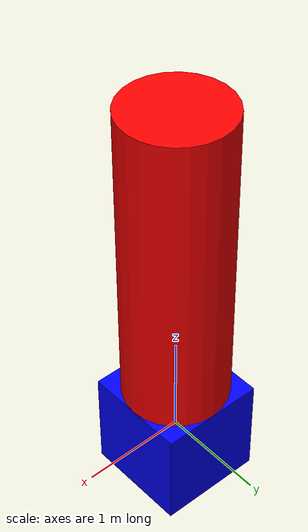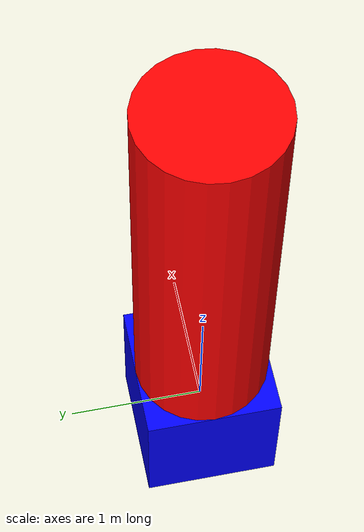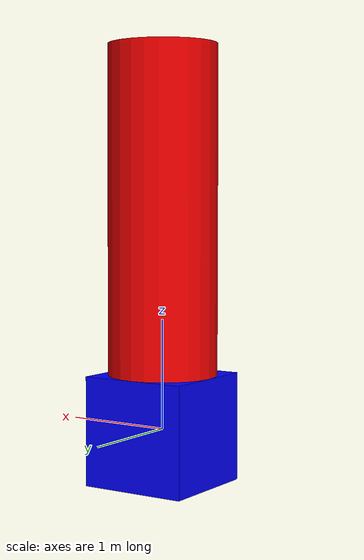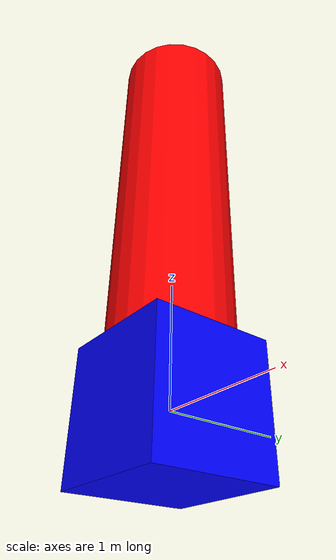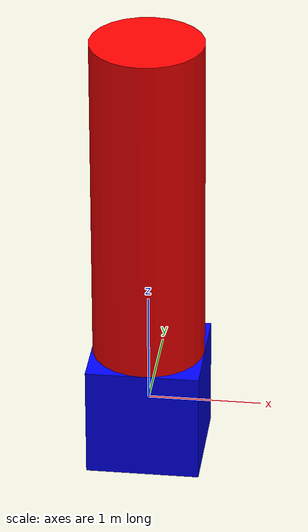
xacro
<robot name="two_link_robot">

  <!-- Dummy root link -->
  <link name="base_link">
    <visual>
      <geometry>
        <box size="0.01 0.01 0.01"/>
      </geometry>
      <material name="grey">
        <color rgba="0.5 0.5 0.5 1"/>
      </material>
    </visual>
  </link>

  <!-- Actual base -->
  <link name="link_1">
    <inertial>
      <origin xyz="0 0 0" rpy="0 0 0"/>
      <mass value="1.0"/>
      <inertia ixx="0.01" ixy="0" ixz="0" iyy="0.01" iyz="0" izz="0.01"/>
    </inertial>
    <visual>
      <geometry>
        <box size="1 1 1"/>
      </geometry>
      <material name="blue">
        <color rgba="0 0 1 1"/>
      </material>
    </visual>
    <collision>
      <geometry>
        <box size="1 1 1"/>
      </geometry>
    </collision>
  </link>

  <joint name="base_to_link1" type="fixed">
    <parent link="base_link"/>
    <child link="link_1"/>
    <origin xyz="0 0 0"/>
  </joint>

  <!-- Second link -->
  <link name="link_2">
    <inertial>
      <origin xyz="0 0 1.5"/>
      <mass value="0.5"/>
      <inertia ixx="0.005" ixy="0" ixz="0" iyy="0.005" iyz="0" izz="0.005"/>
    </inertial>
    <visual>
      <origin xyz="0 0 1.5"/>
      <geometry>
        <cylinder length="3" radius="0.5"/>
      </geometry>
      <material name="red">
        <color rgba="1 0 0 1"/>
      </material>
    </visual>
    <collision>
      <origin xyz="0 0 1.5"/>
      <geometry>
        <cylinder length="3" radius="0.5"/>
      </geometry>
    </collision>
  </link>

  <joint name="joint_1" type="continuous">
    <parent link="link_1"/>
    <child link="link_2"/>
    <origin xyz="0 0 0.5"/>
    <axis xyz="0 1 1"/>
  </joint>

</robot>
